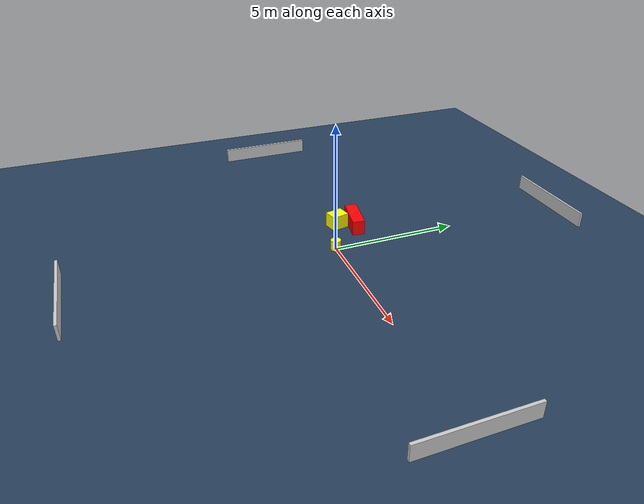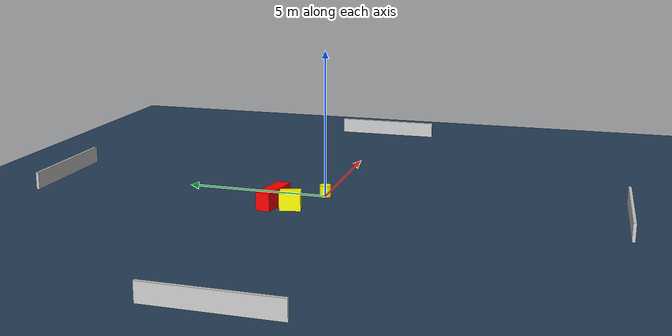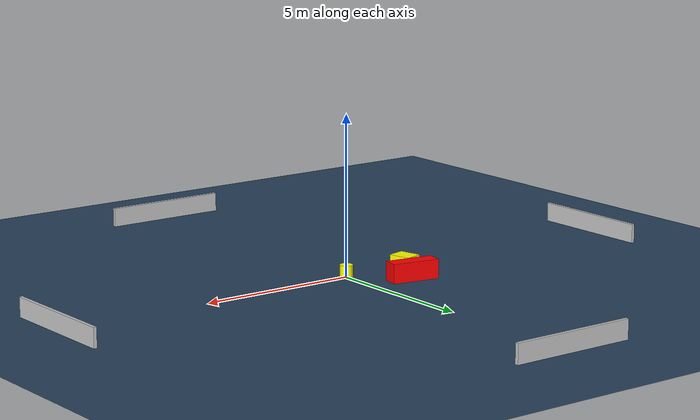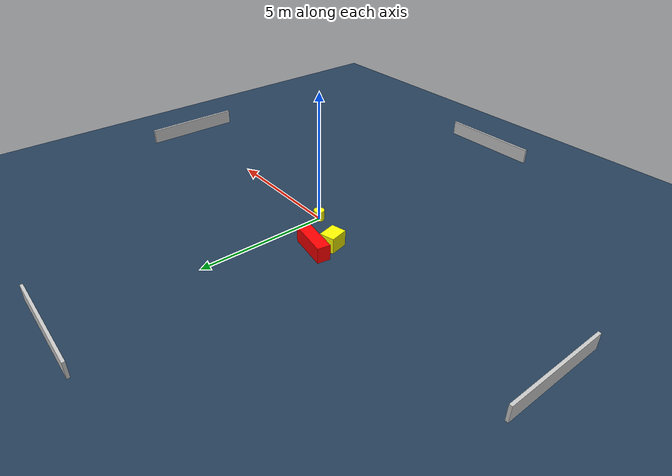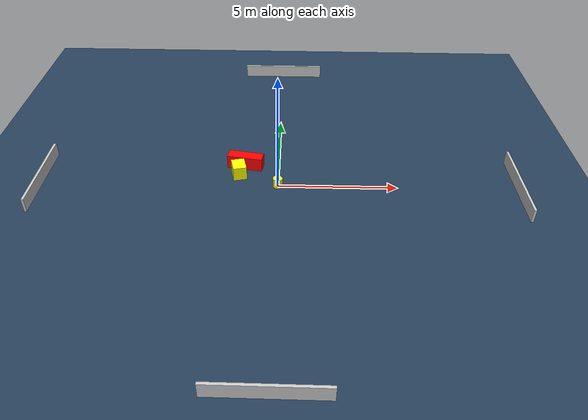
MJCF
<?xml version="1.0" ?>
<mujoco model="generated_environment">
  <option timestep="0.01" integrator="RK4" cone="elliptic"/>
  <default>
    <geom density="1"/>
  </default>
  <asset>
    <texture builtin="gradient" height="3072" name="skybox" rgb1="0.3 0.5 0.7" rgb2="0 0 0" type="skybox" width="512"/>
    <texture builtin="checker" height="300" name="groundplane" rgb1="0.2 0.3 0.4" rgb2="0.1 0.2 0.3" type="2d" width="300"/>
    <material name="groundplane" reflectance="0.2" texrepeat="5 5" texture="groundplane"/>
  </asset>
  <worldbody>
    <light dir="0 0 -1" directional="true" pos="0 0 1.5"/>
    <geom condim="3" friction="0.5 0.005 0.001" material="groundplane" name="floor" pos="0 0 0" size="0 0 0.05" type="plane"/>
    <body name="walls">
      <geom name="wall_1" condim="4" pos="-10.0 0.0 0.3" rgba="0.800000011920929 0.800000011920929 0.800000011920929 1.0" size="0.05 2.0 0.3" type="box"/>
      <geom name="wall_2" condim="4" pos="10.0 0.0 0.3" rgba="0.800000011920929 0.800000011920929 0.800000011920929 1.0" size="0.05 2.0 0.3" type="box"/>
      <geom name="wall_3" condim="4" pos="0.0 -10.0 0.3" rgba="0.800000011920929 0.800000011920929 0.800000011920929 1.0" size="2.0 0.05 0.3" type="box"/>
      <geom name="wall_4" condim="4" pos="0.0 10.0 0.3" rgba="0.800000011920929 0.800000011920929 0.800000011920929 1.0" size="2.0 0.05 0.3" type="box"/>
    </body>
    <body name="robot">
      <joint name="joint_x" type="slide" pos="0 0 0" axis="1 0 0"/>
      <joint name="joint_y" type="slide" pos="0 0 0" axis="0 1 0"/>
      <geom name="robot" type="cylinder" pos="0.0 0.0 0.2" size="0.2 0.2 0.0" mass="5.0" friction="1.0 0.005 0.0001" condim="4" rgba="1.0 1.0 0.0 1.0"/>
    </body>
    <body name="obstacle_1_movable">
      <geom name="obstacle_1_movable" condim="4" pos="-1.6831494985882667 0.7116900677285635 0.3" euler="0 0 283.3119323840929" friction="0.0 0.005 0.001" rgba="1.0 1.0 0.0 1.0" size="0.3515789429983352 0.28511901352691876 0.3" type="box" mass="0.1"/>
      <joint type="free"/>
    </body>
    <body name="obstacle_2_static">
      <geom name="obstacle_2_static" condim="4" pos="-1.4415027996182215 1.3789587359754567 0.3" euler="0 0 170.39574862257024" friction="0.0 0.005 0.001" rgba="1.0 0.0 0.0 1.0" size="0.7584717227017255 0.24676332734324075 0.3" type="box"/>
    </body>
  </worldbody>
  <actuator>
    <motor name="actuator_x" joint="joint_x" gear="1" ctrlrange="-1 1"/>
    <motor name="actuator_y" joint="joint_y" gear="1" ctrlrange="-1 1"/>
  </actuator>
</mujoco>
